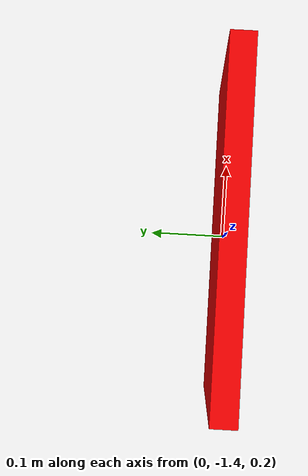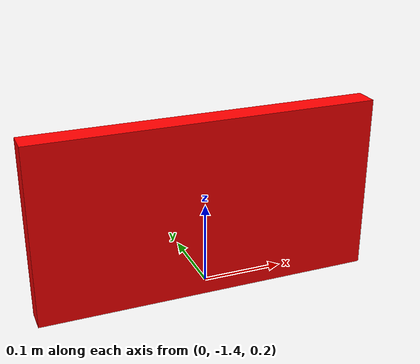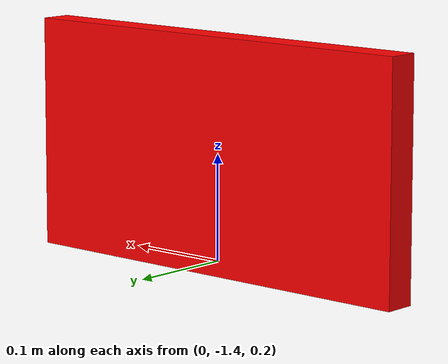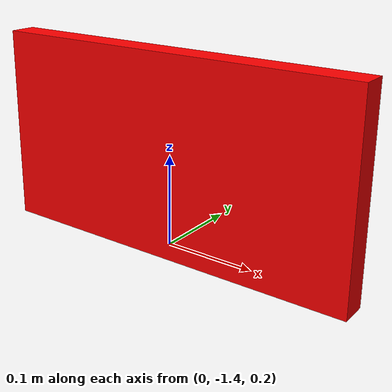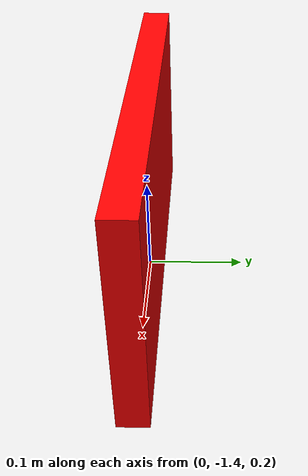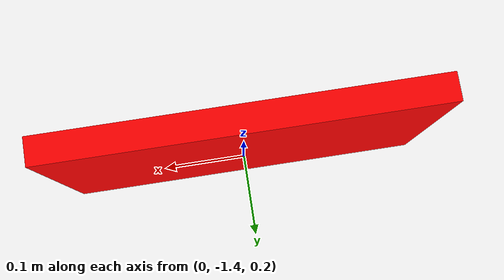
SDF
<?xml version="1.0"?>
<!-- 受控负例：红色薄板，验证颜色阈值不应独自决定结果。 -->
<sdf version="1.9"><model name="hw_suite_red_panel"><static>true</static><pose>0 -1.40 0.30 0 0 0</pose><link name="link"><visual name="visual"><geometry><box><size>0.42 0.03 0.22</size></box></geometry><material><ambient>1 0 0 1</ambient><diffuse>1 0 0 1</diffuse></material></visual></link></model></sdf>
